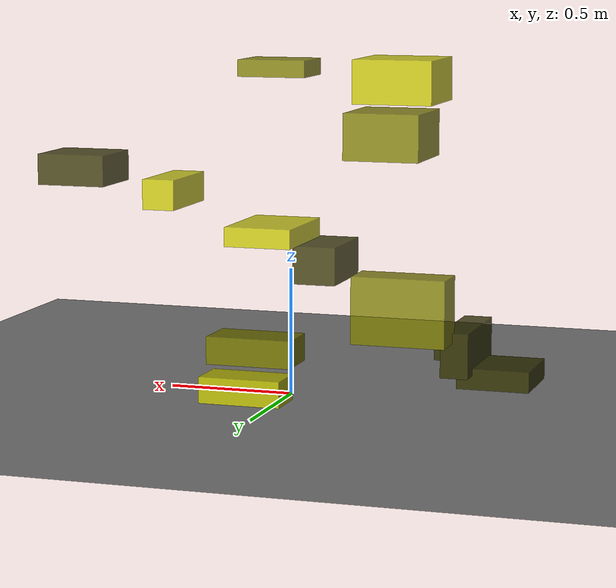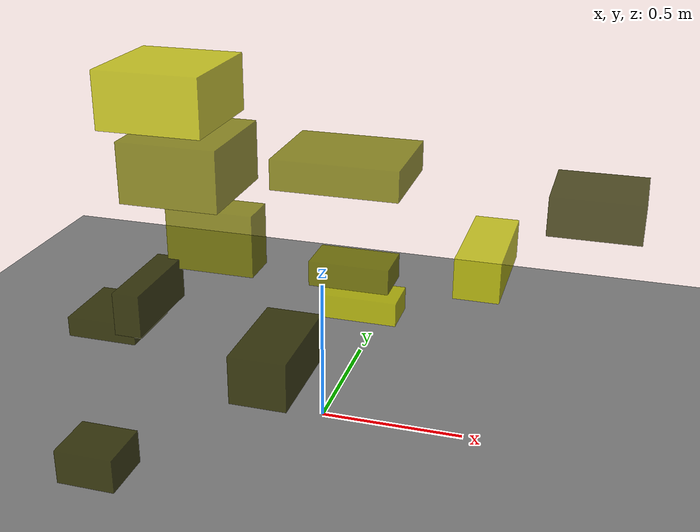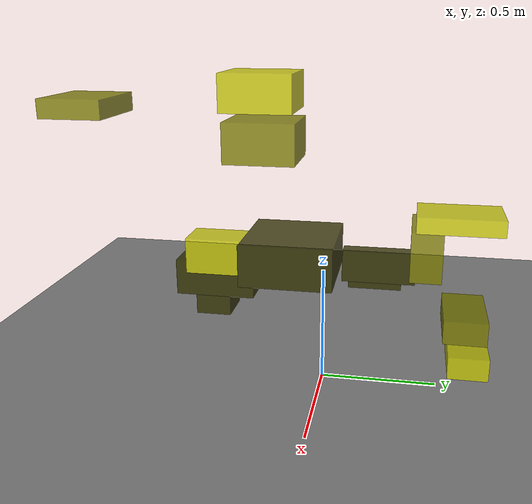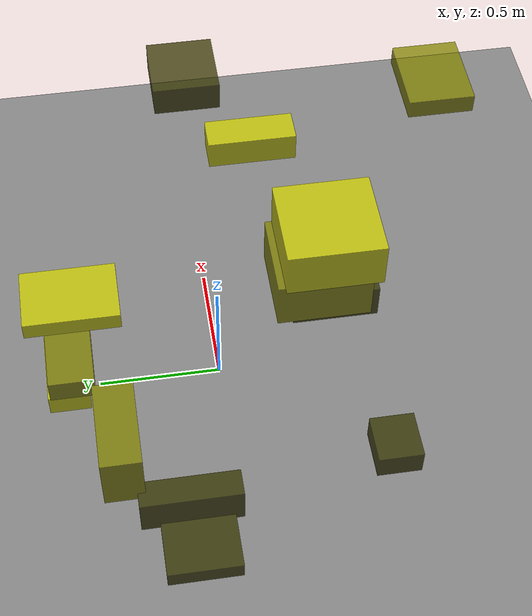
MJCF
<?xml version="1.0"?>
<mujoco model="obstacle_scene">
  <compiler angle="radian" coordinate="local"/>
  <option timestep="0.001" gravity="0 0 -9.81"/>

  <asset>
    <material name="obstacle_mat" rgba="0.8 0.8 0.0 0.8"/>
    <material name="ground_mat" rgba="0.5 0.5 0.5 1"/>
  </asset>

  <worldbody>
    <!-- Ground plane -->
    <geom name="ground" type="plane" size="3 3 0.1" material="ground_mat"/>

    <!-- Obstacles -->
    <body name="obstacle_0" pos="-0.753025 0.204427 0.271648">
      <geom name="obs_0" type="box" size="0.052096 0.193673 0.083537" rgba="0.2 0.2 0.0 0.8"/>
    </body>
    <body name="obstacle_1" pos="-0.570670 0.444196 0.442637">
      <geom name="obs_1" type="box" size="0.175886 0.076674 0.124715" rgba="0.5 0.5 0.0 0.8"/>
    </body>
    <body name="obstacle_2" pos="-0.352983 -0.339434 1.223497">
      <geom name="obs_2" type="box" size="0.160608 0.166562 0.087264" rgba="0.8 0.8 0.0 0.8"/>
    </body>
    <body name="obstacle_3" pos="0.869574 0.018571 0.872348">
      <geom name="obs_3" type="box" size="0.138967 0.133354 0.061175" rgba="0.2 0.2 0.0 0.8"/>
    </body>
    <body name="obstacle_4" pos="-0.058198 0.605117 0.297572">
      <geom name="obs_4" type="box" size="0.160153 0.090022 0.050647" rgba="0.5 0.5 0.0 0.8"/>
    </body>
    <body name="obstacle_5" pos="-0.026139 0.624827 0.150721">
      <geom name="obs_5" type="box" size="0.154574 0.083401 0.048215" rgba="0.8 0.8 0.0 0.8"/>
    </body>
    <body name="obstacle_6" pos="-0.881291 0.184801 0.175126">
      <geom name="obs_6" type="box" size="0.136312 0.141576 0.038310" rgba="0.2 0.2 0.0 0.8"/>
    </body>
    <body name="obstacle_7" pos="-0.314106 -0.320025 1.007538">
      <geom name="obs_7" type="box" size="0.153610 0.165149 0.093727" rgba="0.5 0.5 0.0 0.8"/>
    </body>
    <body name="obstacle_8" pos="0.575254 -0.216120 0.762771">
      <geom name="obs_8" type="box" size="0.066017 0.176102 0.060728" rgba="0.8 0.8 0.0 0.8"/>
    </body>
    <body name="obstacle_9" pos="-0.537937 -0.630743 0.118270">
      <geom name="obs_9" type="box" size="0.097129 0.089536 0.057872" rgba="0.2 0.2 0.0 0.8"/>
    </body>
    <body name="obstacle_10" pos="0.333690 -0.859913 1.228140">
      <geom name="obs_10" type="box" size="0.148776 0.119703 0.035775" rgba="0.5 0.5 0.0 0.8"/>
    </body>
    <body name="obstacle_11" pos="-0.110260 0.563377 0.725768">
      <geom name="obs_11" type="box" size="0.123934 0.179701 0.035125" rgba="0.8 0.8 0.0 0.8"/>
    </body>
    <body name="obstacle_12" pos="0.000543 -0.460606 0.465380">
      <geom name="obs_12" type="box" size="0.088614 0.169598 0.077043" rgba="0.2 0.2 0.0 0.8"/>
    </body>
  </worldbody>
</mujoco>
